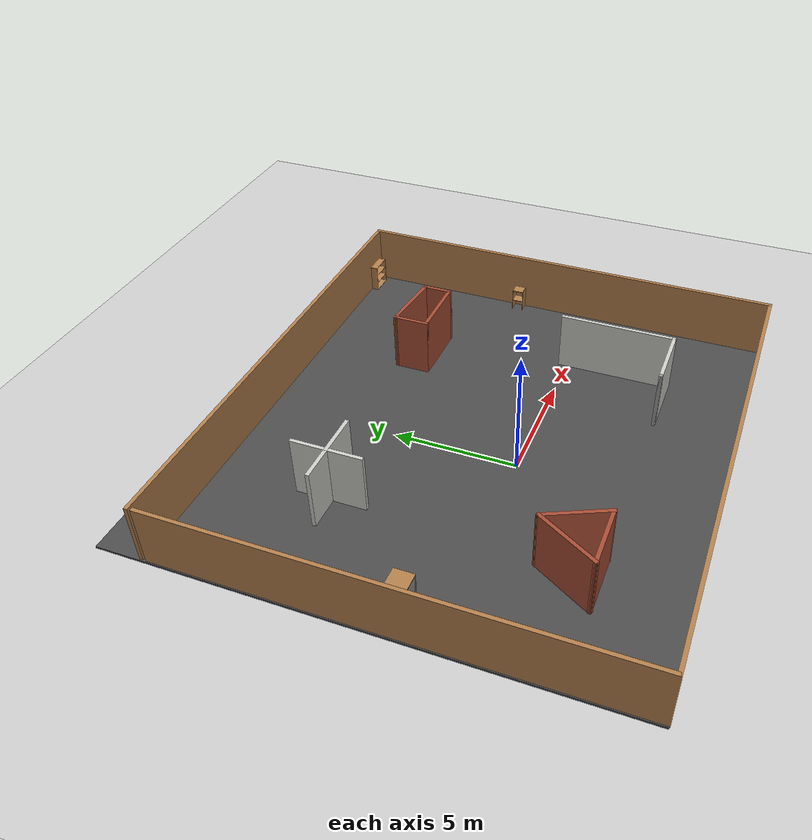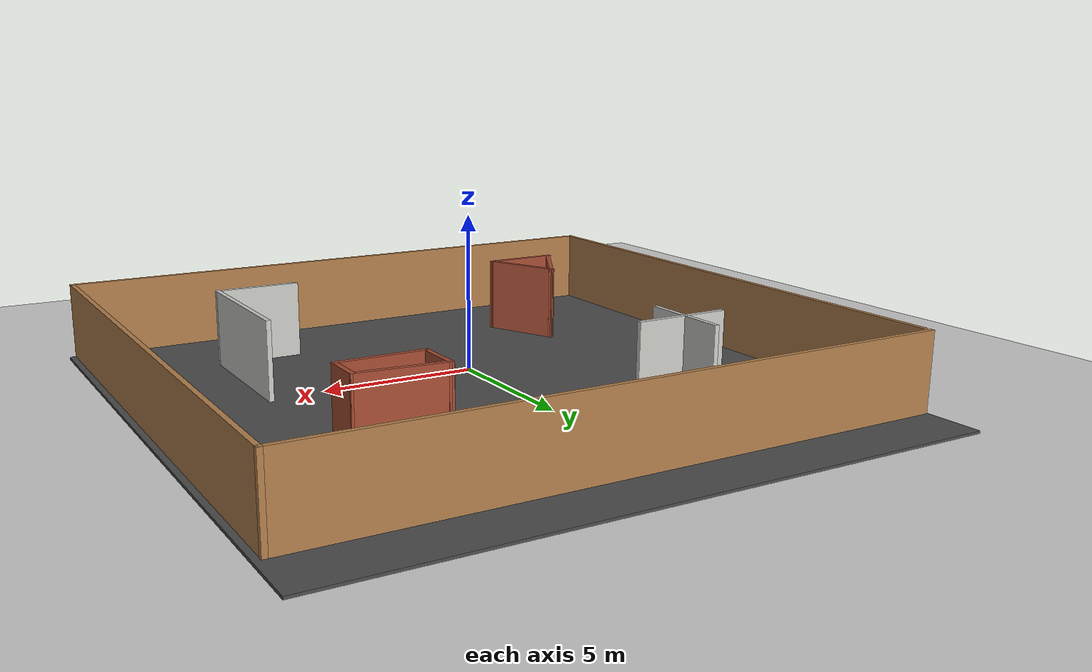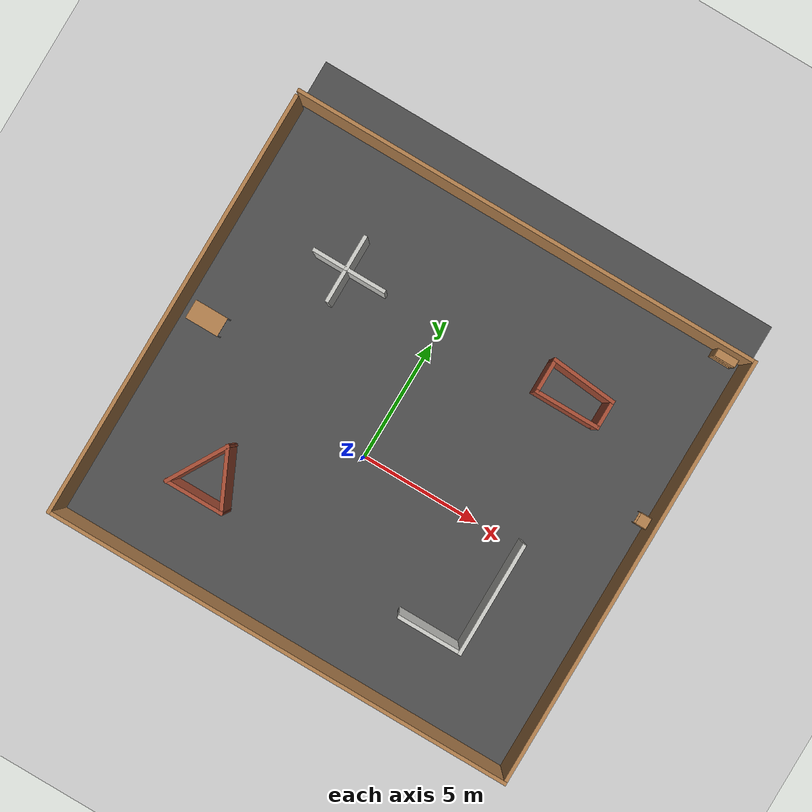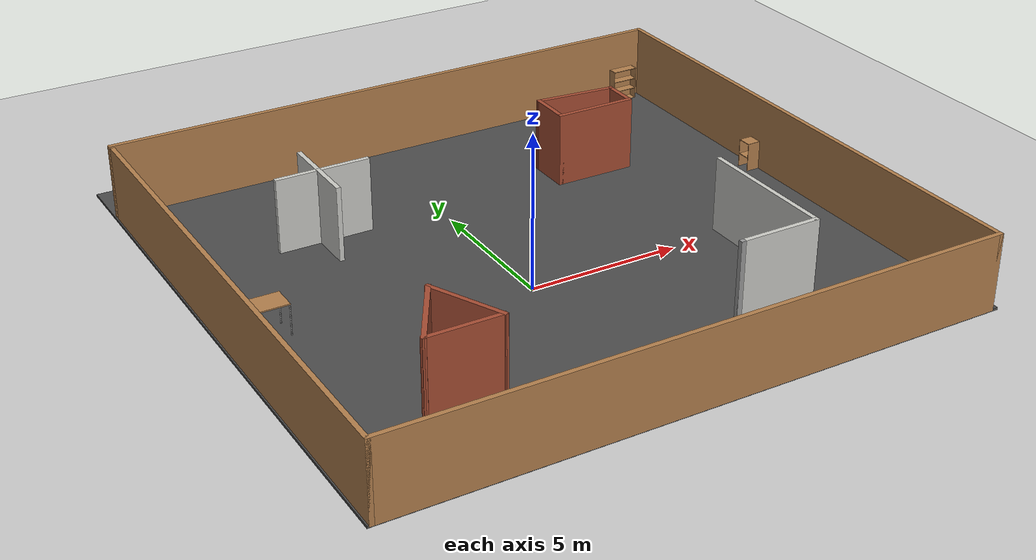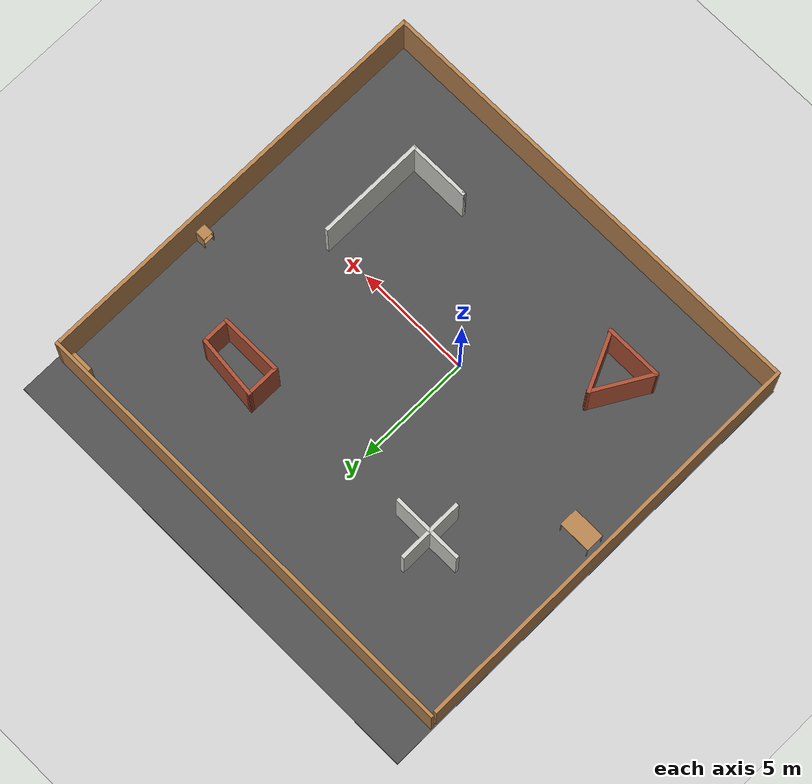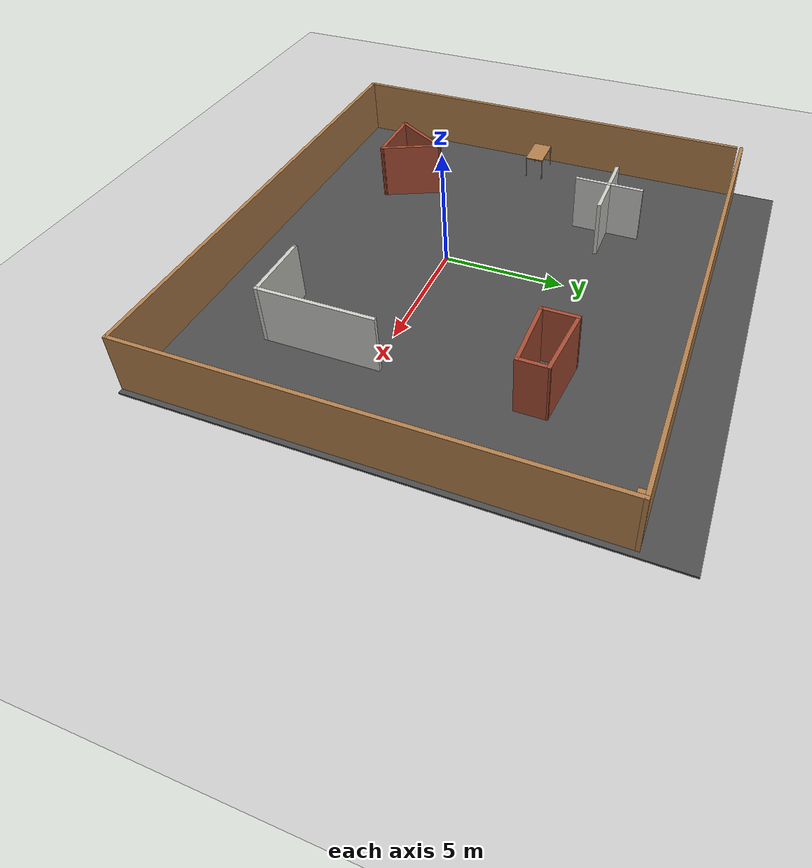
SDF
<sdf version="1.6">
 <world name="default">
  <light name="sun" type="directional">
   <pose>0 0 10 0 -0 0</pose>
   <diffuse>0.8 0.8 0.8 1</diffuse>
   <specular>0.1 0.1 0.1 1</specular>
   <attenuation>
    <range>1000</range>
    <constant>0.9</constant>
    <linear>0.01</linear>
    <quadratic>0.001</quadratic>
   </attenuation>
   <direction>-0.5 0.5 -1</direction>
  </light>
  <model name="ground_plane">
   <static>1</static>
   <link name="link">
    <collision name="collision">
     <geometry><plane><normal>0 0 1</normal><size>100 100</size></plane></geometry>
     <surface><friction><ode><mu>100</mu><mu2>50</mu2></ode></friction></surface>
    </collision>
    <visual name="visual">
     <cast_shadows>0</cast_shadows>
     <geometry><plane><normal>0 0 1</normal><size>100 100</size></plane></geometry>
     <material>
      <script><uri>file://media/materials/scripts/gazebo.material</uri><name>Gazebo/Grey</name></script>
     </material>
    </visual>
   </link>
  </model>
  <gravity>0 0 -9.8</gravity>
  <magnetic_field>6e-06 2.3e-05 -4.2e-05</magnetic_field>
  <atmosphere type="adiabatic"/>
  <physics name="default_physics" default="0" type="ode">
   <max_step_size>0.001</max_step_size>
   <real_time_factor>1</real_time_factor>
   <real_time_update_rate>1000</real_time_update_rate>
  </physics>
  <scene><ambient>0.4 0.4 0.4 1</ambient><background>0.7 0.7 0.7 1</background><shadows>1</shadows></scene>
  <spherical_coordinates>
   <surface_model>EARTH_WGS84</surface_model>
   <latitude_deg>0</latitude_deg>
   <longitude_deg>0</longitude_deg>
   <elevation>0</elevation>
   <heading_deg>0</heading_deg>
  </spherical_coordinates>
  <model name="box">
   <pose>0.852489 1.42589 0 0 -0 0</pose>
   <link name="Wall_10">
    <collision name="Wall_10_Collision">
     <geometry><box><size>2.63445 0.15 2.5</size></box></geometry>
     <pose>0 0 1.25 0 -0 0</pose>
    </collision>
    <visual name="Wall_10_Visual">
     <pose>0 0 1.25 0 -0 0</pose>
     <geometry><box><size>2.63445 0.15 2.5</size></box></geometry>
     <material>
      <script><uri>file://media/materials/scripts/gazebo.material</uri><name>Gazebo/Bricks</name></script>
      <ambient>1 1 1 1</ambient>
     </material>
    </visual>
    <pose>-4.83209 -4.71781 0 0 -0 2.00714</pose>
   </link>
   <link name="Wall_12">
    <collision name="Wall_12_Collision">
     <geometry><box><size>4.75 0.15 2.5</size></box></geometry>
     <pose>0 0 1.25 0 -0 0</pose>
    </collision>
    <visual name="Wall_12_Visual">
     <pose>0 0 1.25 0 -0 0</pose>
     <geometry><box><size>4.75 0.15 2.5</size></box></geometry>
     <material>
      <script><uri>file://media/materials/scripts/gazebo.material</uri><name>Gazebo/CeilingTiled</name></script>
      <ambient>1 1 1 1</ambient>
     </material>
    </visual>
    <pose>5.93001 -3.46465 0 0 0 -1.5708</pose>
   </link>
   <link name="Wall_13">
    <collision name="Wall_13_Collision">
     <geometry><box><size>2.75 0.15 2.5</size></box></geometry>
     <pose>0 0 1.25 0 -0 0</pose>
    </collision>
    <visual name="Wall_13_Visual">
     <pose>0 0 1.25 0 -0 0</pose>
     <geometry><box><size>2.75 0.15 2.5</size></box></geometry>
     <material>
      <script><uri>file://media/materials/scripts/gazebo.material</uri><name>Gazebo/CeilingTiled</name></script>
      <ambient>1 1 1 1</ambient>
     </material>
    </visual>
    <pose>4.63001 -5.76465 0 0 -0 3.14159</pose>
   </link>
   <link name="Wall_14">
    <collision name="Wall_14_Collision">
     <geometry><box><size>0.16 0.15 2.5</size></box></geometry>
     <pose>0 0 1.25 0 -0 0</pose>
    </collision>
    <visual name="Wall_14_Visual">
     <pose>0 0 1.25 0 -0 0</pose>
     <geometry><box><size>0.16 0.15 2.5</size></box></geometry>
     <material>
      <script><uri>file://media/materials/scripts/gazebo.material</uri><name>Gazebo/Grey</name></script>
      <ambient>1 1 1 1</ambient>
     </material>
    </visual>
    <pose>3.33501 -5.76465 0 0 -0 0</pose>
   </link>
   <link name="Wall_16">
    <collision name="Wall_16_Collision">
     <geometry><box><size>1.5 0.15 2.5</size></box></geometry>
     <pose>0 0 1.25 0 -0 0</pose>
    </collision>
    <visual name="Wall_16_Visual">
     <pose>0 0 1.25 0 -0 0</pose>
     <geometry><box><size>1.5 0.15 2.5</size></box></geometry>
     <material>
      <script><uri>file://media/materials/scripts/gazebo.material</uri><name>Gazebo/Bricks</name></script>
      <ambient>1 1 1 1</ambient>
     </material>
    </visual>
    <pose>3.42177 4.6737 0 0 0 -1.5708</pose>
   </link>
   <link name="Wall_17">
    <collision name="Wall_17_Collision">
     <geometry><box><size>2.75 0.15 2.5</size></box></geometry>
     <pose>0 0 1.25 0 -0 0</pose>
    </collision>
    <visual name="Wall_17_Visual">
     <pose>0 0 1.25 0 -0 0</pose>
     <geometry><box><size>2.75 0.15 2.5</size></box></geometry>
     <material>
      <script><uri>file://media/materials/scripts/gazebo.material</uri><name>Gazebo/Bricks</name></script>
      <ambient>1 1 1 1</ambient>
     </material>
    </visual>
    <pose>4.72177 3.9987 0 0 -0 0</pose>
   </link>
   <link name="Wall_18">
    <collision name="Wall_18_Collision">
     <geometry><box><size>1.25 0.15 2.5</size></box></geometry>
     <pose>0 0 1.25 0 -0 0</pose>
    </collision>
    <visual name="Wall_18_Visual">
     <pose>0 0 1.25 0 -0 0</pose>
     <geometry><box><size>1.25 0.15 2.5</size></box></geometry>
     <material>
      <script><uri>file://media/materials/scripts/gazebo.material</uri><name>Gazebo/Bricks</name></script>
      <ambient>1 1 1 1</ambient>
     </material>
    </visual>
    <pose>6.02177 4.5487 0 0 -0 1.5708</pose>
   </link>
   <link name="Wall_19">
    <collision name="Wall_19_Collision">
     <geometry><box><size>2.76199 0.15 2.5</size></box></geometry>
     <pose>0 0 1.25 0 -0 0</pose>
    </collision>
    <visual name="Wall_19_Visual">
     <pose>0 0 1.25 0 -0 0</pose>
     <geometry><box><size>2.76199 0.15 2.5</size></box></geometry>
     <material>
      <script><uri>file://media/materials/scripts/gazebo.material</uri><name>Gazebo/Bricks</name></script>
      <ambient>1 1 1 1</ambient>
     </material>
    </visual>
    <pose>4.72177 5.2237 0 0 -0 3.04573</pose>
   </link>
   <link name="Wall_21">
    <collision name="Wall_21_Collision">
     <geometry><box><size>1.5 0.15 2.5</size></box></geometry>
     <pose>0 0 1.25 0 -0 0</pose>
    </collision>
    <visual name="Wall_21_Visual">
     <pose>0 0 1.25 0 -0 0</pose>
     <geometry><box><size>1.5 0.15 2.5</size></box></geometry>
     <material>
      <script><uri>file://media/materials/scripts/gazebo.material</uri><name>Gazebo/CeilingTiled</name></script>
      <ambient>1 1 1 1</ambient>
     </material>
    </visual>
    <pose>-4.95254 4.95689 0 0 0 -1.5708</pose>
   </link>
   <link name="Wall_22">
    <collision name="Wall_22_Collision">
     <geometry><box><size>1.5 0.15 2.5</size></box></geometry>
     <pose>0 0 1.25 0 -0 0</pose>
    </collision>
    <visual name="Wall_22_Visual">
     <pose>0 0 1.25 0 -0 0</pose>
     <geometry><box><size>1.5 0.15 2.5</size></box></geometry>
     <material>
      <script><uri>file://media/materials/scripts/gazebo.material</uri><name>Gazebo/CeilingTiled</name></script>
      <ambient>1 1 1 1</ambient>
     </material>
    </visual>
    <pose>-5.62754 4.28189 0 0 -0 3.14159</pose>
   </link>
   <link name="Wall_24">
    <collision name="Wall_24_Collision">
     <geometry><box><size>1.5 0.15 2.5</size></box></geometry>
     <pose>0 0 1.25 0 -0 0</pose>
    </collision>
    <visual name="Wall_24_Visual">
     <pose>0 0 1.25 0 -0 0</pose>
     <geometry><box><size>1.5 0.15 2.5</size></box></geometry>
     <material>
      <script><uri>file://media/materials/scripts/gazebo.material</uri><name>Gazebo/CeilingTiled</name></script>
      <ambient>1 1 1 1</ambient>
     </material>
    </visual>
    <pose>-4.95254 3.60689 0 0 0 -1.5708</pose>
   </link>
   <link name="Wall_26">
    <collision name="Wall_26_Collision">
     <geometry><box><size>1.75 0.15 2.5</size></box></geometry>
     <pose>0 0 1.25 0 -0 0</pose>
    </collision>
    <visual name="Wall_26_Visual">
     <pose>0 0 1.25 0 -0 0</pose>
     <geometry><box><size>1.75 0.15 2.5</size></box></geometry>
     <material>
      <script><uri>file://media/materials/scripts/gazebo.material</uri><name>Gazebo/CeilingTiled</name></script>
      <ambient>1 1 1 1</ambient>
     </material>
    </visual>
    <pose>-4.15254 4.28189 0 0 -0 0</pose>
   </link>
   <link name="Wall_3">
    <collision name="Wall_3_Collision">
     <geometry><box><size>18 0.15 2.5</size></box></geometry>
     <pose>0 0 1.25 0 -0 0</pose>
    </collision>
    <visual name="Wall_3_Visual">
     <pose>0 0 1.25 0 -0 0</pose>
     <geometry><box><size>18 0.15 2.5</size></box></geometry>
     <material>
      <script><uri>file://media/materials/scripts/gazebo.material</uri><name>Gazebo/Wood</name></script>
      <ambient>1 1 1 1</ambient>
     </material>
    </visual>
    <pose>-9.8 -0.125 0 0 0 -1.5708</pose>
   </link>
   <link name="Wall_4">
    <collision name="Wall_4_Collision">
     <geometry><box><size>19.75 0.15 2.5</size></box></geometry>
     <pose>0 0 1.25 0 -0 0</pose>
    </collision>
    <visual name="Wall_4_Visual">
     <pose>0 0 1.25 0 -0 0</pose>
     <geometry><box><size>19.75 0.15 2.5</size></box></geometry>
     <material>
      <script><uri>file://media/materials/scripts/gazebo.material</uri><name>Gazebo/Wood</name></script>
      <ambient>1 1 1 1</ambient>
     </material>
    </visual>
    <pose>0 -9.05 0 0 -0 0</pose>
   </link>
   <link name="Wall_5">
    <collision name="Wall_5_Collision">
     <geometry><box><size>18.25 0.15 2.5</size></box></geometry>
     <pose>0 0 1.25 0 -0 0</pose>
    </collision>
    <visual name="Wall_5_Visual">
     <pose>0 0 1.25 0 -0 0</pose>
     <geometry><box><size>18.25 0.15 2.5</size></box></geometry>
     <material>
      <script><uri>file://media/materials/scripts/gazebo.material</uri><name>Gazebo/Wood</name></script>
      <ambient>1 1 1 1</ambient>
     </material>
    </visual>
    <pose>9.8 0 0 0 -0 1.5708</pose>
   </link>
   <link name="Wall_6">
    <collision name="Wall_6_Collision">
     <geometry><box><size>19.75 0.15 2.5</size></box></geometry>
     <pose>0 0 1.25 0 -0 0</pose>
    </collision>
    <visual name="Wall_6_Visual">
     <pose>0 0 1.25 0 -0 0</pose>
     <geometry><box><size>19.75 0.15 2.5</size></box></geometry>
     <material>
      <script><uri>file://media/materials/scripts/gazebo.material</uri><name>Gazebo/Wood</name></script>
      <ambient>1 1 1 1</ambient>
     </material>
    </visual>
    <pose>0 9.05 0 0 -0 3.14159</pose>
   </link>
   <link name="Wall_8">
    <collision name="Wall_8_Collision">
     <geometry><box><size>2.75 0.15 2.5</size></box></geometry>
     <pose>0 0 1.25 0 -0 0</pose>
    </collision>
    <visual name="Wall_8_Visual">
     <pose>0 0 1.25 0 -0 0</pose>
     <geometry><box><size>2.75 0.15 2.5</size></box></geometry>
     <material>
      <script><uri>file://media/materials/scripts/gazebo.material</uri><name>Gazebo/Bricks</name></script>
      <ambient>1 1 1 1</ambient>
     </material>
    </visual>
    <pose>-6.00709 -4.71781 0 0 0 -2.0944</pose>
   </link>
   <link name="Wall_9">
    <collision name="Wall_9_Collision">
     <geometry><box><size>2.5 0.15 2.5</size></box></geometry>
     <pose>0 0 1.25 0 -0 0</pose>
    </collision>
    <visual name="Wall_9_Visual">
     <pose>0 0 1.25 0 -0 0</pose>
     <geometry><box><size>2.5 0.15 2.5</size></box></geometry>
     <material>
      <script><uri>file://media/materials/scripts/gazebo.material</uri><name>Gazebo/Bricks</name></script>
      <ambient>1 1 1 1</ambient>
     </material>
    </visual>
    <pose>-5.48209 -5.84365 0 0 -0 0</pose>
   </link>
   <static>1</static>
  </model>
  <model name="asphalt_plane">
   <static>1</static>
   <link name="link">
    <collision name="collision"><geometry><box><size>20 20 0.1</size></box></geometry></collision>
    <visual name="visual">
     <cast_shadows>0</cast_shadows>
     <geometry><box><size>20 20 0.1</size></box></geometry>
     <material>
      <script>
       <uri>model://asphalt_plane/materials/scripts</uri>
       <uri>model://asphalt_plane/materials/textures</uri>
       <name>vrc/asphalt</name>
      </script>
     </material>
    </visual>
   </link>
   <pose>0.928453 2.31662 0 0 -0 0</pose>
  </model>
  <model name="table">
   <static>0</static>
   <link name="link">
    <collision name="surface">
     <pose>0 0 1 0 -0 0</pose>
     <geometry><box><size>1.5 0.8 0.03</size></box></geometry>
     <surface><friction><ode><mu>0.6</mu><mu2>0.6</mu2></ode></friction></surface>
    </collision>
    <visual name="visual1">
     <pose>0 0 1 0 -0 0</pose>
     <geometry><box><size>1.4 0.8 0.04</size></box></geometry>
     <material>
      <script><uri>file://media/materials/scripts/gazebo.material</uri><name>Gazebo/Wood</name></script>
     </material>
    </visual>
    <collision name="front_left_leg">
     <pose>0.68 0.38 0.5 0 -0 0</pose>
     <geometry><cylinder><radius>0.02</radius><length>1</length></cylinder></geometry>
    </collision>
    <visual name="front_left_leg">
     <pose>0.68 0.38 0.5 0 -0 0</pose>
     <geometry><cylinder><radius>0.02</radius><length>1</length></cylinder></geometry>
     <material>
      <script><uri>file://media/materials/scripts/gazebo.material</uri><name>Gazebo/Grey</name></script>
     </material>
    </visual>
    <collision name="front_right_leg">
     <pose>0.68 -0.38 0.5 0 -0 0</pose>
     <geometry><cylinder><radius>0.02</radius><length>1</length></cylinder></geometry>
    </collision>
    <visual name="front_right_leg">
     <pose>0.68 -0.38 0.5 0 -0 0</pose>
     <geometry><cylinder><radius>0.02</radius><length>1</length></cylinder></geometry>
     <material>
      <script><uri>file://media/materials/scripts/gazebo.material</uri><name>Gazebo/Grey</name></script>
     </material>
    </visual>
    <collision name="back_right_leg">
     <pose>-0.68 -0.38 0.5 0 -0 0</pose>
     <geometry><cylinder><radius>0.02</radius><length>1</length></cylinder></geometry>
    </collision>
    <visual name="back_right_leg">
     <pose>-0.68 -0.38 0.5 0 -0 0</pose>
     <geometry><cylinder><radius>0.02</radius><length>1</length></cylinder></geometry>
     <material>
      <script><uri>file://media/materials/scripts/gazebo.material</uri><name>Gazebo/Grey</name></script>
     </material>
    </visual>
    <collision name="back_left_leg">
     <pose>-0.68 0.38 0.5 0 -0 0</pose>
     <geometry><cylinder><radius>0.02</radius><length>1</length></cylinder></geometry>
    </collision>
    <visual name="back_left_leg">
     <pose>-0.68 0.38 0.5 0 -0 0</pose>
     <geometry><cylinder><radius>0.02</radius><length>1</length></cylinder></geometry>
     <material>
      <script><uri>file://media/materials/scripts/gazebo.material</uri><name>Gazebo/Grey</name></script>
     </material>
    </visual>
    <inertial>
     <inertia><ixx>1</ixx><ixy>0</ixy><ixz>0</ixz><iyy>1</iyy><iyz>0</iyz><izz>1</izz></inertia>
     <mass>1</mass>
    </inertial>
   </link>
   <pose>-7.81067 1.48685 0.049996 2e-06 -4e-06 0</pose>
  </model>
  <model name="cabinet">
   <static>1</static>
   <link name="cabinet_bottom_plate">
    <inertial>
     <pose>0 0 -1 0 -0 0</pose>
     <inertia><ixx>2.05</ixx><ixy>0</ixy><ixz>0</ixz><iyy>2.05</iyy><iyz>0</iyz><izz>2.05</izz></inertia>
     <mass>25</mass>
    </inertial>
    <collision name="cabinet_bottom_plate_geom">
     <pose>0 0 0.01 0 -0 0</pose>
     <geometry><box><size>0.45 0.45 0.02</size></box></geometry>
    </collision>
    <visual name="cabinet_bottom_plate_geom_visual">
     <pose>0 0 0.01 0 -0 0</pose>
     <geometry><box><size>0.45 0.45 0.02</size></box></geometry>
     <material>
      <script><uri>file://media/materials/scripts/gazebo.material</uri><name>Gazebo/Wood</name></script>
     </material>
    </visual>
    <collision name="cabinet_bottom_plate_geom_cabinet_back_plate">
     <pose>0.235 0 0.51 0 -0 0</pose>
     <geometry><box><size>0.02 0.45 1.02</size></box></geometry>
    </collision>
    <visual name="cabinet_bottom_plate_geom_cabinet_back_plate_visual">
     <pose>0.235 0 0.51 0 -0 0</pose>
     <geometry><box><size>0.02 0.45 1.02</size></box></geometry>
     <material>
      <script><uri>file://media/materials/scripts/gazebo.material</uri><name>Gazebo/Wood</name></script>
     </material>
    </visual>
    <collision name="cabinet_bottom_plate_geom_cabinet_left_plate">
     <pose>0 0.235 0.51 0 -0 0</pose>
     <geometry><box><size>0.45 0.02 1.02</size></box></geometry>
    </collision>
    <visual name="cabinet_bottom_plate_geom_cabinet_left_plate_visual">
     <pose>0 0.235 0.51 0 -0 0</pose>
     <geometry><box><size>0.45 0.02 1.02</size></box></geometry>
     <material>
      <script><uri>file://media/materials/scripts/gazebo.material</uri><name>Gazebo/Wood</name></script>
     </material>
    </visual>
    <collision name="cabinet_bottom_plate_geom_cabinet_middle_plate">
     <pose>0 0 0.51 0 -0 0</pose>
     <geometry><box><size>0.45 0.45 0.02</size></box></geometry>
    </collision>
    <visual name="cabinet_bottom_plate_geom_cabinet_middle_plate_visual">
     <pose>0 0 0.51 0 -0 0</pose>
     <geometry><box><size>0.45 0.45 0.02</size></box></geometry>
     <material>
      <script><uri>file://media/materials/scripts/gazebo.material</uri><name>Gazebo/Wood</name></script>
     </material>
    </visual>
    <collision name="cabinet_bottom_plate_geom_cabinet_right_plate">
     <pose>0 -0.235 0.51 0 -0 0</pose>
     <geometry><box><size>0.45 0.02 1.02</size></box></geometry>
    </collision>
    <visual name="cabinet_bottom_plate_geom_cabinet_right_plate_visual">
     <pose>0 -0.235 0.51 0 -0 0</pose>
     <geometry><box><size>0.45 0.02 1.02</size></box></geometry>
     <material>
      <script><uri>file://media/materials/scripts/gazebo.material</uri><name>Gazebo/Wood</name></script>
     </material>
    </visual>
    <collision name="cabinet_bottom_plate_geom_cabinet_top_plate">
     <pose>0 0 1.01 0 -0 0</pose>
     <geometry><box><size>0.45 0.45 0.02</size></box></geometry>
    </collision>
    <visual name="cabinet_bottom_plate_geom_cabinet_top_plate_visual">
     <pose>0 0 1.01 0 -0 0</pose>
     <geometry><box><size>0.45 0.45 0.02</size></box></geometry>
     <material>
      <script><uri>file://media/materials/scripts/gazebo.material</uri><name>Gazebo/Wood</name></script>
     </material>
    </visual>
   </link>
   <pose>10.3466 3.34573 0 0 -0 0</pose>
  </model>
  <model name="bookshelf">
   <static>1</static>
   <link name="link">
    <inertial><mass>1</mass></inertial>
    <collision name="back">
     <pose>0 0.005 0.6 0 -0 0</pose>
     <geometry><box><size>0.9 0.01 1.2</size></box></geometry>
    </collision>
    <visual name="visual1">
     <pose>0 0.005 0.6 0 -0 0</pose>
     <geometry><box><size>0.9 0.01 1.2</size></box></geometry>
     <material>
      <script><uri>file://media/materials/scripts/gazebo.material</uri><name>Gazebo/Wood</name></script>
     </material>
    </visual>
    <collision name="left_side">
     <pose>0.45 -0.195 0.6 0 -0 0</pose>
     <geometry><box><size>0.02 0.4 1.2</size></box></geometry>
    </collision>
    <visual name="visual2">
     <pose>0.45 -0.195 0.6 0 -0 0</pose>
     <geometry><box><size>0.02 0.4 1.2</size></box></geometry>
     <material>
      <script><uri>file://media/materials/scripts/gazebo.material</uri><name>Gazebo/Wood</name></script>
     </material>
    </visual>
    <collision name="right_side">
     <pose>-0.45 -0.195 0.6 0 -0 0</pose>
     <geometry><box><size>0.02 0.4 1.2</size></box></geometry>
    </collision>
    <visual name="visual3">
     <pose>-0.45 -0.195 0.6 0 -0 0</pose>
     <geometry><box><size>0.02 0.4 1.2</size></box></geometry>
     <material>
      <script><uri>file://media/materials/scripts/gazebo.material</uri><name>Gazebo/Wood</name></script>
     </material>
    </visual>
    <collision name="bottom">
     <pose>0 -0.195 0.03 0 -0 0</pose>
     <geometry><box><size>0.88 0.4 0.06</size></box></geometry>
    </collision>
    <visual name="visual4">
     <pose>0 -0.195 0.03 0 -0 0</pose>
     <geometry><box><size>0.88 0.4 0.06</size></box></geometry>
     <material>
      <script><uri>file://media/materials/scripts/gazebo.material</uri><name>Gazebo/Wood</name></script>
     </material>
    </visual>
    <collision name="top">
     <pose>0 -0.195 1.19 0 -0 0</pose>
     <geometry><box><size>0.88 0.4 0.02</size></box></geometry>
    </collision>
    <visual name="visual5">
     <pose>0 -0.195 1.19 0 -0 0</pose>
     <geometry><box><size>0.88 0.4 0.02</size></box></geometry>
     <material>
      <script><uri>file://media/materials/scripts/gazebo.material</uri><name>Gazebo/Wood</name></script>
     </material>
    </visual>
    <collision name="low_shelf">
     <pose>0 -0.195 0.43 0 -0 0</pose>
     <geometry><box><size>0.88 0.4 0.02</size></box></geometry>
    </collision>
    <visual name="visual6">
     <pose>0 -0.195 0.43 0 -0 0</pose>
     <geometry><box><size>0.88 0.4 0.02</size></box></geometry>
     <material>
      <script><uri>file://media/materials/scripts/gazebo.material</uri><name>Gazebo/Wood</name></script>
     </material>
    </visual>
    <collision name="high_shelf">
     <pose>0 -0.195 0.8 0 -0 0</pose>
     <geometry><box><size>0.88 0.4 0.02</size></box></geometry>
    </collision>
    <visual name="visual7">
     <pose>0 -0.195 0.8 0 -0 0</pose>
     <geometry><box><size>0.88 0.4 0.02</size></box></geometry>
     <material>
      <script><uri>file://media/materials/scripts/gazebo.material</uri><name>Gazebo/Wood</name></script>
     </material>
    </visual>
   </link>
   <pose>9.85601 10.481 0 0 -0 0</pose>
  </model>
 </world>
</sdf>
